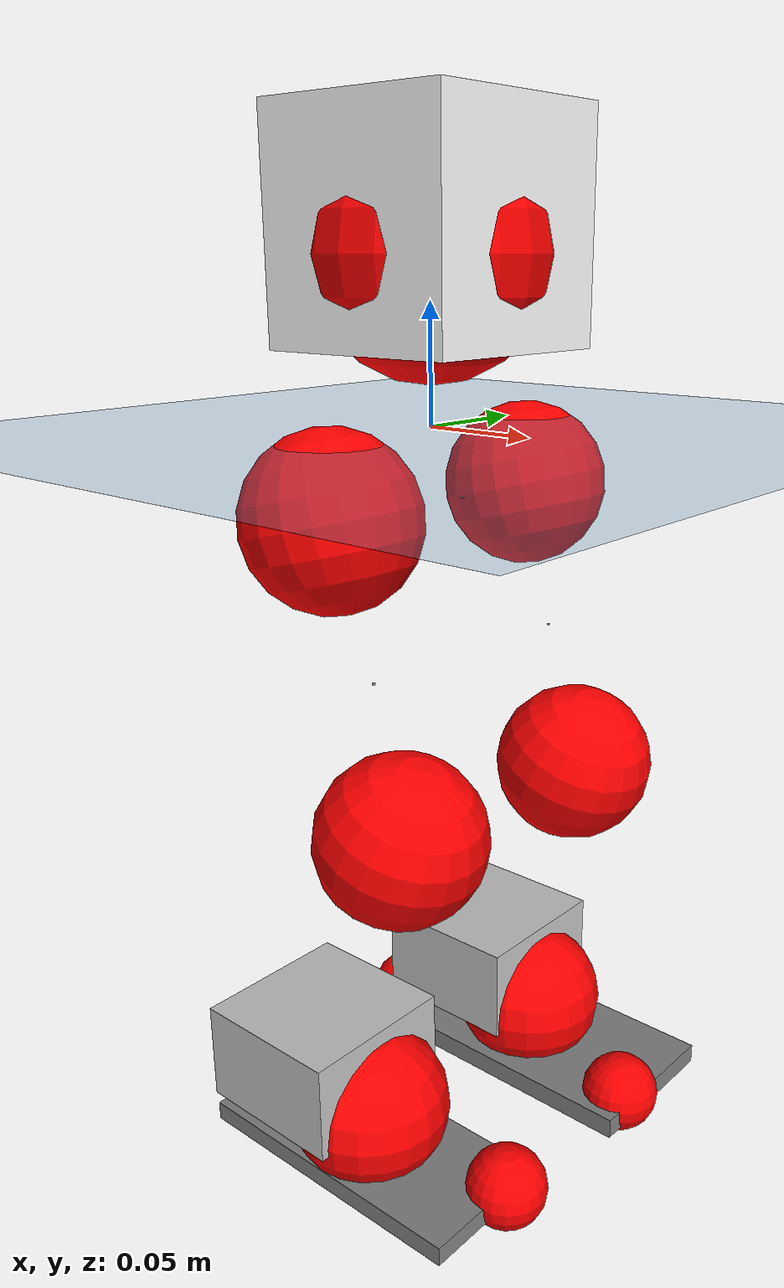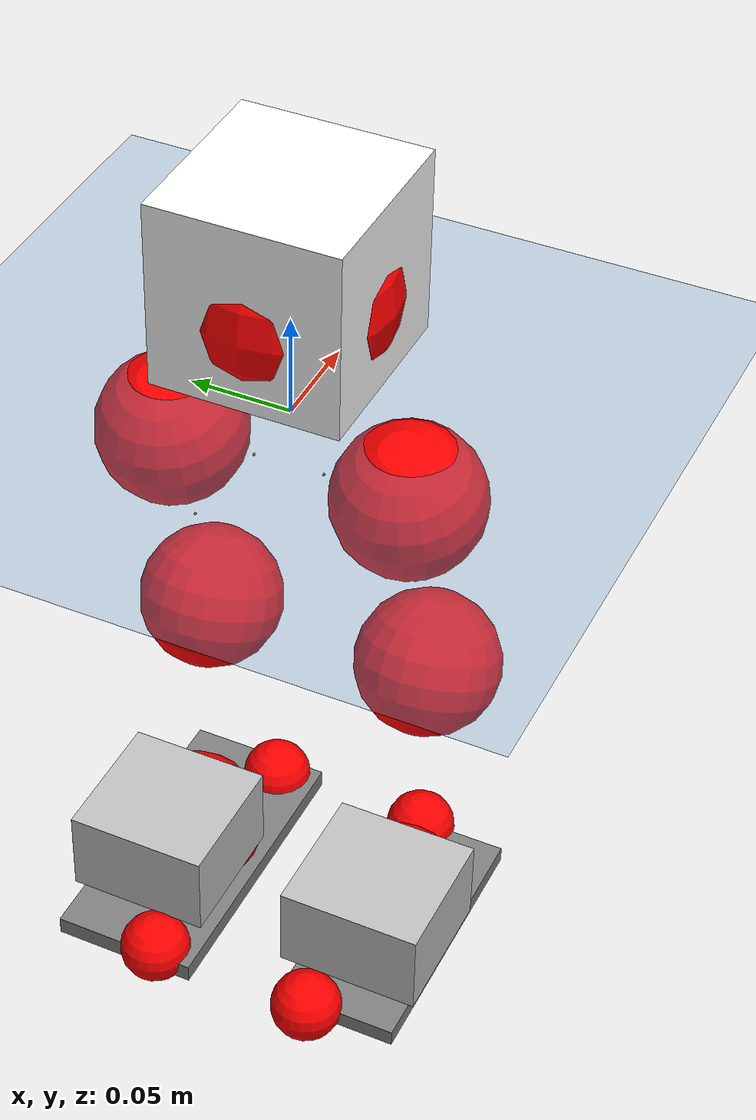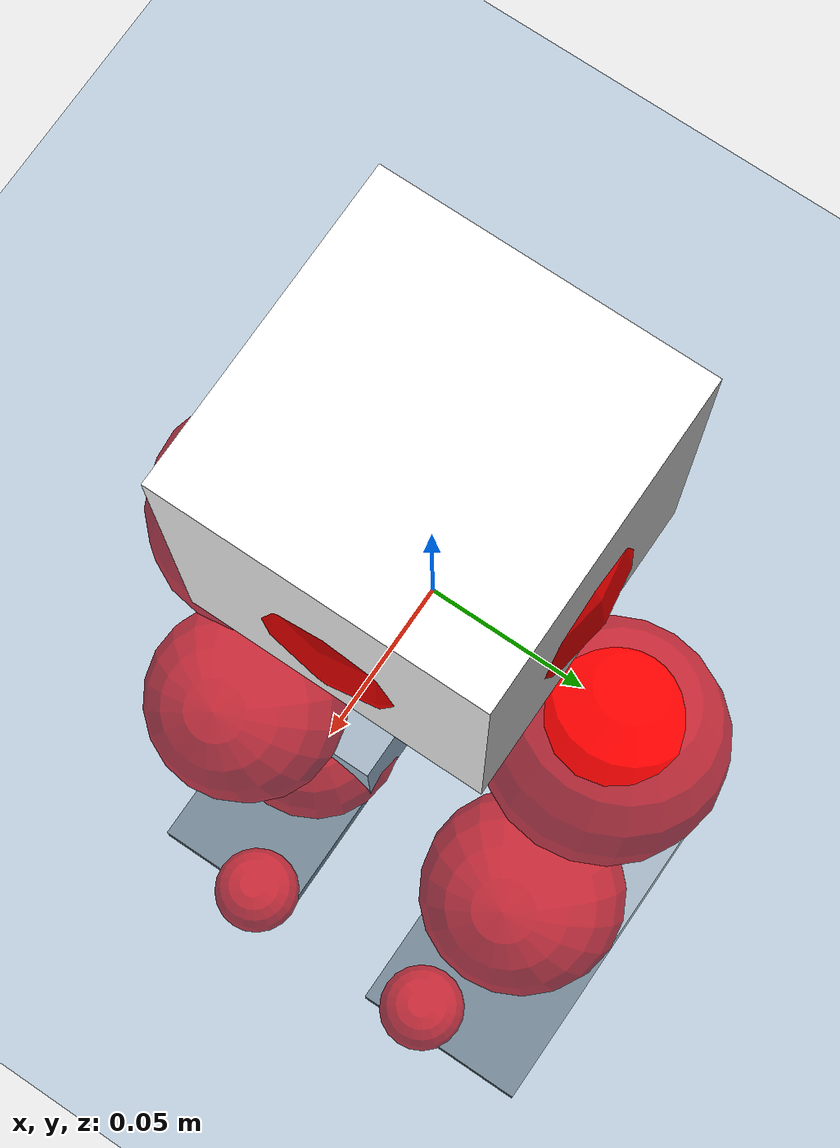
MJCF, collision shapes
<mujoco model="pi_12dof_release_v1">
  <compiler angle="radian" assetdir="assets" balanceinertia="true" inertiafromgeom="false"/>

  <option timestep="0.005" density="1.2" viscosity="2e-05"/>

  <size nkey="1"/>

  <visual>
    <quality shadowsize="8192"/>
    <map shadowclip="0.5"/>
  </visual>

  <default>
    <default class="/">
      <joint armature="0.01" damping="0.01" frictionloss="0.01"/>
      <geom contype="0" conaffinity="0" group="1" solref="-1000 -80"/>
      <site size="0.01 0.005 0.005" group="5"/>
      <general forcelimited="true" biastype="affine" gainprm="20" biasprm="0 -20 -0.5"/>
      <default class="foot">
        <geom size="0.0845 0.036 0.005" type="box" condim="6" group="4" priority="1" friction="0.9 0.2 0.2" solimp="0.015 1 0.005"/>
      </default>
      <default class="reward_collision_sphere">
        <geom group="5" rgba="1 0 0 1"/>
      </default>
    </default>
  </default>

  <asset>
    <texture type="skybox" colorspace="auto" name="//unnamed_texture_0" builtin="gradient" rgb1="0.95 0.95 0.95" rgb2="0.95 0.95 0.95" width="100" height="600"/>
    <texture type="2d" colorspace="auto" name="texplane" builtin="checker" rgb1="0.345 0.575 0.748" rgb2="0.345 0.575 0.748" markrgb="1 1 1" width="512" height="512"/>
    <material name="MatPlane" class="/" texture="texplane" texuniform="true" texrepeat="2 2" specular="0.9"/>
    <mesh name="baselink_1" class="/" file="baselink_1.STL"/>
    <mesh name="r_hip_pitch_link" class="/" file="r_hip_pitch_link.STL"/>
    <mesh name="r_hip_roll_link" class="/" file="r_hip_roll_link.STL"/>
    <mesh name="r_thigh_link" class="/" file="r_thigh_link.STL"/>
    <mesh name="r_calf_link" class="/" file="r_calf_link.STL"/>
    <mesh name="r_ankle_pitch_link" class="/" file="r_ankle_pitch_link.STL"/>
    <mesh name="r_ankle_roll_link" class="/" file="r_ankle_roll_link.STL"/>
    <mesh name="l_hip_pitch_link" class="/" file="l_hip_pitch_link.STL"/>
    <mesh name="l_hip_roll_link" class="/" file="l_hip_roll_link.STL"/>
    <mesh name="l_thigh_link" class="/" file="l_thigh_link.STL"/>
    <mesh name="l_calf_link" class="/" file="l_calf_link.STL"/>
    <mesh name="l_ankle_pitch_link" class="/" file="l_ankle_pitch_link.STL"/>
    <mesh name="l_ankle_roll_link" class="/" file="l_ankle_roll_link.STL"/>
  </asset>

  <worldbody>
    <geom name="floor" class="/" size="100 100 0.125" type="plane" group="0" material="MatPlane"/>
    <light name="toplight_shadow" class="/" pos="0 0 5" dir="0.0990148 0.0990148 -0.990148" type="directional" ambient="0.04 0.04 0.04" diffuse="0.55 0.55 0.55" specular="0.12 0.12 0.12"/>
    <light name="toplight_fill" class="/" pos="0 0 5" dir="0.0990148 0.0990148 -0.990148" type="directional" castshadow="false" ambient="0.04 0.04 0.04" diffuse="0.3 0.3 0.3" specular="0.08 0.08 0.08"/>
    <body name="trunk" pos="-0.000146312 0.000463768 0.000857068" quat="1 7.85815e-06 0.000140594 -7.05489e-05">
      <inertial pos="0.00321364 -0.00152125 0.0389181" quat="0.69361 0.00652543 0.0100561 0.720251" mass="1.65681" diaginertia="0.0124197 0.00226536 0.00329543"/>
      <joint name="//unnamed_joint_0" type="free"/>
      <geom name="//unnamed_geom_1" class="/" type="mesh" density="0" rgba="1 1 1 1" mesh="baselink_1"/>
      <geom name="//unnamed_geom_2" class="/" size="0.0459004 0.0459004 0.0459004" pos="0 0 0.0760272" type="box" rgba="1 1 1 1"/>
      <geom name="//unnamed_geom_3" class="reward_collision_sphere" size="0.0504905" pos="0 0 0.0665238"/>
      <site name="imu" class="/" pos="-0.00341846 -0.0107215 0.00469641" size="0.00918009"/>
      <camera name="track" class="/" pos="0 -1.51774 0" quat="0.707107 0.707107 0 0" mode="trackcom"/>
      <camera name="ego_camera" class="/" pos="0.0783613 0 0.171061" quat="-0.5 -0.5 0.5 0.5"/>
      <body name="r_hip_pitch_link" pos="0.000279556 -0.0171469 -0.031365" quat="0.992291 -0.000462023 -0.123926 -0.000380222">
        <inertial pos="0.00182444 -0.0427689 7.60778e-05" quat="-0.0180056 0.706452 -0.0286701 0.706951" mass="0.291938" diaginertia="0.000137793 2.52579e-05 6.5042e-05"/>
        <joint name="r_hip_pitch_joint" class="/" pos="0 0 0" axis="0.00329774 -0.999982 -0.00500561" range="-1.75656 1.26124" armature="0.00952751" damping="0.012855" frictionloss="0.00890892"/>
        <geom name="//unnamed_geom_4" class="/" type="mesh" density="0" rgba="0.75294 0.75294 0.75294 1" mesh="r_hip_pitch_link"/>
        <geom name="//unnamed_geom_5" class="/" size="0.000459004 0.000459004 0.000459004" type="box" rgba="0.75294 0.75294 0.75294 1"/>
        <body name="r_hip_roll_link" pos="0.000368431 -0.0421246 0.000154431" quat="1 -4.68256e-05 -7.4982e-06 0.000178569">
          <inertial pos="-0.00136297 -0.00189525 -0.0605769" quat="0.705353 -0.0820902 -0.0815296 0.69935" mass="0.299782" diaginertia="0.000417806 7.06651e-05 9.97616e-05"/>
          <joint name="r_hip_roll_joint" class="/" pos="0 0 0" axis="-0.999999 0.000346892 -0.00135159" range="-0.109778 0.527376" armature="0.00872231" damping="0.00940616" frictionloss="0.00956038"/>
          <geom name="//unnamed_geom_6" class="/" type="mesh" density="0" rgba="0.75294 0.75294 0.75294 1" mesh="r_hip_roll_link"/>
          <geom name="//unnamed_geom_7" class="/" size="0.000459004 0.000459004 0.000459004" type="box" rgba="0.75294 0.75294 0.75294 1"/>
          <geom name="//unnamed_geom_8" class="reward_collision_sphere" size="0.0367204"/>
          <body name="r_thigh_link" pos="0.00187371 0.00261294 -0.0653418" quat="1 3.37648e-05 -0.00013494 7.15288e-05">
            <inertial pos="0.000710009 0.00137449 -0.0453933" quat="0.737245 0.675626 -1.13848e-05 5.85397e-05" mass="0.0885329" diaginertia="0.000154962 2.37862e-05 4.47002e-05"/>
            <joint name="r_thigh_joint" class="/" pos="0 0 0" axis="-0.0011009 -0.000434188 -0.999999" range="-0.314294 0.576255" armature="0.00926851" damping="0" frictionloss="0.00818783"/>
            <geom name="//unnamed_geom_9" class="/" type="mesh" density="0" rgba="0.75294 0.75294 0.75294 1" mesh="r_thigh_link"/>
            <geom name="//unnamed_geom_10" class="/" size="0.000459004 0.000459004 0.000459004" type="box" rgba="0.75294 0.75294 0.75294 1"/>
            <body name="r_calf_link" pos="-0.000983118 -0.00193692 -0.0651513" quat="0.947648 -2.68403e-05 0.319316 -6.4141e-05">
              <inertial pos="0.000500307 -0.000399033 -0.0663946" quat="0.999923 -0.00205736 0.00462568 0.0112927" mass="0.642596" diaginertia="0.00452599 0.000888898 0.000138611"/>
              <joint name="r_calf_joint" class="/" pos="0 0 0" axis="0.000908615 -0.999991 -0.00415424" range="-1.62034 0.646589" armature="0.00890957" damping="0.0112757" frictionloss="0.00933029"/>
              <geom name="//unnamed_geom_11" class="/" type="mesh" density="0" rgba="0.75294 0.75294 0.75294 1" mesh="r_calf_link"/>
              <geom name="//unnamed_geom_12" class="/" size="0.000459004 0.000459004 0.000459004" type="box" rgba="0.75294 0.75294 0.75294 1"/>
              <geom name="//unnamed_geom_13" class="reward_collision_sphere" size="0.0367204"/>
              <body name="r_ankle_pitch_link" pos="0.000404673 0.000441725 -0.133554" quat="0.980002 -0.000283415 -0.198987 2.73985e-05">
                <inertial pos="0.00506623 0.00274578 -0.00208553" quat="-0.003954 0.704857 -0.0107701 0.709257" mass="0.137727" diaginertia="0.000395196 5.70676e-05 9.49256e-05"/>
                <joint name="r_ankle_pitch_joint" class="/" pos="0 0 0" axis="0.000452664 -0.999984 0.00558259" range="-1.29478 0.541417" armature="0.0091481" damping="0.00986253" frictionloss="0.00972876"/>
                <geom name="//unnamed_geom_14" class="/" type="mesh" density="0" rgba="0.75294 0.75294 0.75294 1" mesh="r_ankle_pitch_link"/>
                <geom name="//unnamed_geom_15" class="/" size="0.0358023 0.0367204 0.0229502" type="box" rgba="0.75294 0.75294 0.75294 1"/>
                <body name="r_ankle_roll_link" pos="0.0793119 0.00200958 -0.000543306" quat="1 -3.57271e-05 4.92455e-05 6.54183e-05">
                  <inertial pos="-0.0249407 2.3824e-05 -0.0116603" quat="0.562309 0.428293 0.434934 0.557859" mass="0.387541" diaginertia="0.00135291 0.000259009 0.000209591"/>
                  <joint name="r_ankle_roll_joint" class="/" pos="0 0 0" axis="-0.999963 0.00414582 0.00759919" range="-0.156002 0.1274" armature="0.00838558" damping="0.0106518" frictionloss="0.00949864"/>
                  <geom name="//unnamed_geom_16" class="/" type="mesh" density="0" rgba="0.75294 0.75294 0.75294 1" mesh="r_ankle_roll_link"/>
                  <geom name="//unnamed_geom_17" class="/" type="mesh" rgba="0.75294 0.75294 0.75294 1" mesh="r_ankle_roll_link"/>
                  <geom name="right_foot" class="foot" size="0.0703969 0.0314776 0.0044188" pos="-0.0532857 0 -0.0418149"/>
                  <geom name="//unnamed_geom_19" class="reward_collision_sphere" size="0.0367204" pos="-0.0522409 0 -0.0190068"/>
                  <geom name="//unnamed_geom_20" class="reward_collision_sphere" size="0.0183602" pos="0.0156723 0.0151774 -0.0380136"/>
                  <geom name="//unnamed_geom_21" class="reward_collision_sphere" size="0.0183602" pos="-0.125378 0.0151774 -0.0380136"/>
                  <site name="right_foot" class="foot" pos="-0.0532857 0 -0.0418149" size="0.00918009"/>
                </body>
              </body>
            </body>
          </body>
        </body>
      </body>
      <body name="l_hip_pitch_link" pos="0.000724745 0.0185174 -0.032535" quat="0.99221 0.000180401 -0.124576 -2.50934e-05">
        <inertial pos="0.00116794 0.0401855 -0.00157036" quat="-0.03908 0.707299 0.0289094 0.705241" mass="0.305091" diaginertia="0.000161035 2.63109e-05 7.79249e-05"/>
        <joint name="l_hip_pitch_joint" class="/" pos="0 0 0" axis="0.00511764 0.999987 -0.000202567" range="-1.23952 1.7604" armature="0.00937606" damping="0.0147216" frictionloss="0.00899005"/>
        <geom name="//unnamed_geom_22" class="/" type="mesh" density="0" rgba="0.75294 0.75294 0.75294 1" mesh="l_hip_pitch_link"/>
        <geom name="//unnamed_geom_23" class="/" size="0.000459004 0.000459004 0.000459004" type="box" rgba="0.75294 0.75294 0.75294 1"/>
        <body name="l_hip_roll_link" pos="0.00132843 0.0429045 0.000381089" quat="1 -0.000249866 -8.01617e-06 0.000231944">
          <inertial pos="-0.00243616 -0.000170348 -0.0603058" quat="0.698832 -0.0729095 -0.0716096 0.707947" mass="0.296062" diaginertia="0.000400873 6.87367e-05 9.65025e-05"/>
          <joint name="l_hip_roll_joint" class="/" pos="0 0 0" axis="-1 0.000230974 7.60786e-05" range="-0.53582 0.128511" armature="0.00948786" damping="0" frictionloss="0.00916163"/>
          <geom name="//unnamed_geom_24" class="/" type="mesh" density="0" rgba="0.75294 0.75294 0.75294 1" mesh="l_hip_roll_link"/>
          <geom name="//unnamed_geom_25" class="/" size="0.000459004 0.000459004 0.000459004" type="box" rgba="0.75294 0.75294 0.75294 1"/>
          <geom name="//unnamed_geom_26" class="reward_collision_sphere" size="0.0367204"/>
          <body name="l_thigh_link" pos="0.00022065 -0.00160109 -0.0663326" quat="1 2.75874e-05 1.5498e-05 1.76502e-05">
            <inertial pos="-0.000246582 -0.0011194 -0.045407" quat="0.674231 0.738513 -0.00325251 0.00045758" mass="0.0870401" diaginertia="0.000155796 2.35906e-05 4.55241e-05"/>
            <joint name="l_thigh_joint" class="/" pos="0 0 0" axis="0.00077166 -0.000170083 -1" range="-0.60205 0.312676" armature="0.00909453" damping="0.00409752" frictionloss="0.00893611"/>
            <geom name="//unnamed_geom_27" class="/" type="mesh" density="0" rgba="0.75294 0.75294 0.75294 1" mesh="l_thigh_link"/>
            <geom name="//unnamed_geom_28" class="/" size="0.000459004 0.000459004 0.000459004" type="box" rgba="0.75294 0.75294 0.75294 1"/>
            <body name="l_calf_link" pos="-0.000514209 0.000700226 -0.0670761" quat="0.947607 1.7475e-05 0.319439 -0.000341338">
              <inertial pos="0.000290958 0.00332483 -0.0671882" quat="0.999984 0.00291152 1.23102e-05 0.00475764" mass="0.606202" diaginertia="0.00425903 0.000857635 0.000132013"/>
              <joint name="l_calf_joint" class="/" pos="0 0 0" axis="0.00139197 0.999999 -0.000492996" stiffness="0.0016571" range="-0.608711 1.68284" armature="0.00914661" damping="0.00627956" frictionloss="0.00877892"/>
              <geom name="//unnamed_geom_29" class="/" type="mesh" density="0" rgba="0.75294 0.75294 0.75294 1" mesh="l_calf_link"/>
              <geom name="//unnamed_geom_30" class="/" size="0.000459004 0.000459004 0.000459004" type="box" rgba="0.75294 0.75294 0.75294 1"/>
              <geom name="//unnamed_geom_31" class="reward_collision_sphere" size="0.0367204"/>
              <body name="l_ankle_pitch_link" pos="-0.000845603 0.000522162 -0.13162" quat="0.980071 2.75046e-05 -0.198647 -0.000121496">
                <inertial pos="0.00543489 -0.000722593 -2.01502e-05" quat="-0.00269134 0.707317 0.00278255 0.706886" mass="0.133216" diaginertia="0.000374295 5.48648e-05 9.27585e-05"/>
                <joint name="l_ankle_pitch_joint" class="/" pos="0 0 0" axis="2.80972e-05 1 0.000133346" range="-0.537074 1.29564" armature="0.0088783" damping="0.00489218" frictionloss="0.00911174"/>
                <geom name="//unnamed_geom_32" class="/" type="mesh" density="0" rgba="0.75294 0.75294 0.75294 1" mesh="l_ankle_pitch_link"/>
                <geom name="//unnamed_geom_33" class="/" size="0.0358023 0.0367204 0.0229502" type="box" rgba="0.75294 0.75294 0.75294 1"/>
                <body name="l_ankle_roll_link" pos="0.0802523 0.000106319 5.20535e-05" quat="1 2.49078e-05 -2.5838e-05 -3.8836e-05">
                  <inertial pos="-0.0260022 -0.00014397 -0.0140087" quat="0.560665 0.429374 0.43319 0.560035" mass="0.399865" diaginertia="0.00141231 0.000258524 0.000220489"/>
                  <joint name="l_ankle_roll_joint" class="/" pos="0 0 0" axis="-0.999997 0.00230328 0.000606603" stiffness="0.000151936" range="-0.166408 0.153008" armature="0.0093143" damping="0.00844329" frictionloss="0.00919185"/>
                  <geom name="//unnamed_geom_34" class="/" type="mesh" density="0" rgba="0.75294 0.75294 0.75294 1" mesh="l_ankle_roll_link"/>
                  <geom name="//unnamed_geom_35" class="/" type="mesh" rgba="0.75294 0.75294 0.75294 1" mesh="l_ankle_roll_link"/>
                  <geom name="left_foot" class="foot" size="0.0787745 0.0378205 0.00488268" pos="-0.0532857 0 -0.0418149"/>
                  <geom name="//unnamed_geom_37" class="reward_collision_sphere" size="0.0367204" pos="-0.0522409 0 -0.0190068"/>
                  <geom name="//unnamed_geom_38" class="reward_collision_sphere" size="0.0183602" pos="0.0156723 -0.0151774 -0.0380136"/>
                  <geom name="//unnamed_geom_39" class="reward_collision_sphere" size="0.0183602" pos="-0.125378 -0.0151774 -0.0380136"/>
                  <site name="left_foot" class="foot" pos="-0.0532857 0 -0.0418149" size="0.00918009"/>
                </body>
              </body>
            </body>
          </body>
        </body>
      </body>
    </body>
  </worldbody>

  <contact>
    <pair class="/" geom1="floor" geom2="right_foot" name="//unnamed_contact_1"/>
    <pair class="/" geom1="floor" geom2="left_foot" name="//unnamed_contact_0"/>
  </contact>

  <actuator>
    <general name="r_hip_pitch_joint" class="/" joint="r_hip_pitch_joint" forcerange="-19.3576 19.3576" gainprm="18.5358" biasprm="0 -18.5358 -0.471382"/>
    <general name="r_hip_roll_joint" class="/" joint="r_hip_roll_joint" forcerange="-18.3522 18.3522" gainprm="18.5358" biasprm="0 -18.5358 -0.471382"/>
    <general name="r_thigh_joint" class="/" joint="r_thigh_joint" forcerange="-18.7443 18.7443" gainprm="18.5358" biasprm="0 -18.5358 -0.471382"/>
    <general name="r_calf_joint" class="/" joint="r_calf_joint" forcerange="-19.8678 19.8678" gainprm="18.5358" biasprm="0 -18.5358 -0.471382"/>
    <general name="r_ankle_pitch_joint" class="/" joint="r_ankle_pitch_joint" forcerange="-18.5742 18.5742" gainprm="18.5358" biasprm="0 -18.5358 -0.471382"/>
    <general name="r_ankle_roll_joint" class="/" joint="r_ankle_roll_joint" forcerange="-18.7173 18.7173" gainprm="18.5358" biasprm="0 -18.5358 -0.471382"/>
    <general name="l_hip_pitch_joint" class="/" joint="l_hip_pitch_joint" forcerange="-19.3436 19.3436" gainprm="18.5358" biasprm="0 -18.5358 -0.471382"/>
    <general name="l_hip_roll_joint" class="/" joint="l_hip_roll_joint" forcerange="-20.0556 20.0556" gainprm="18.5358" biasprm="0 -18.5358 -0.471382"/>
    <general name="l_thigh_joint" class="/" joint="l_thigh_joint" forcerange="-18.1802 18.1802" gainprm="18.5358" biasprm="0 -18.5358 -0.471382"/>
    <general name="l_calf_joint" class="/" joint="l_calf_joint" forcerange="-19.6394 19.6394" gainprm="18.5358" biasprm="0 -18.5358 -0.471382"/>
    <general name="l_ankle_pitch_joint" class="/" joint="l_ankle_pitch_joint" forcerange="-18.9234 18.9234" gainprm="18.5358" biasprm="0 -18.5358 -0.471382"/>
    <general name="l_ankle_roll_joint" class="/" joint="l_ankle_roll_joint" forcerange="-20.8708 20.8708" gainprm="18.5358" biasprm="0 -18.5358 -0.471382"/>
  </actuator>

  <sensor>
    <gyro site="imu" name="imu_angular_velocity"/>
    <velocimeter site="imu" name="imu_linear_velocity"/>
    <framelinvel objtype="site" objname="left_foot" name="left_foot_global_linear_velocity"/>
    <framelinvel objtype="site" objname="right_foot" name="right_foot_global_linear_velocity"/>
  </sensor>

  <keyframe>
    <key name="home" qpos="0 0 0.291 1 0 0 0 0.4 0 0 -0.8 0.4 0 -0.4 0 0 0.8 -0.4 0"/>
  </keyframe>
</mujoco>
